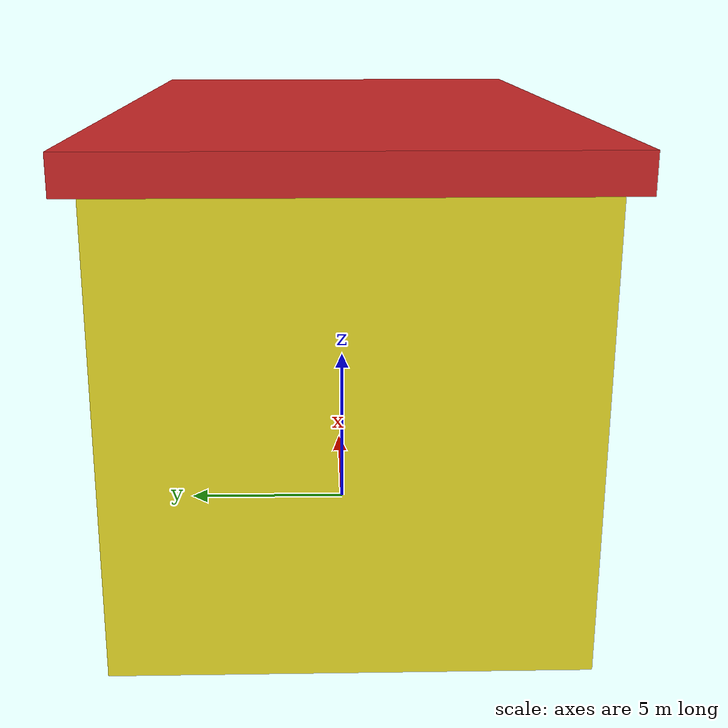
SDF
<?xml version="1.0" ?>
<sdf version="1.6">
  <model name="campus_house">
    <static>true</static>
    <link name="link">
      <collision name="collision">
        <pose>0 0 6 0 0 0</pose>
        <geometry>
          <box>
            <size>20 12 12</size>
          </box>
        </geometry>
      </collision>
      <visual name="visual_body">
        <pose>0 0 6 0 0 0</pose>
        <geometry>
          <box>
            <size>20 12 12</size>
          </box>
        </geometry>
        <material>
          <script>
            <uri>file://media/materials/scripts/gazebo.material</uri>
            <name>Gazebo/Yellow</name>
          </script>
        </material>
      </visual>
      <visual name="visual_roof">
        <pose>0 0 12.5 0 0 0</pose>
        <geometry>
          <box>
            <size>21 13 1</size>
          </box>
        </geometry>
        <material>
          <script>
            <uri>file://media/materials/scripts/gazebo.material</uri>
            <name>Gazebo/Red</name>
          </script>
        </material>
      </visual>
    </link>
  </model>
</sdf>
